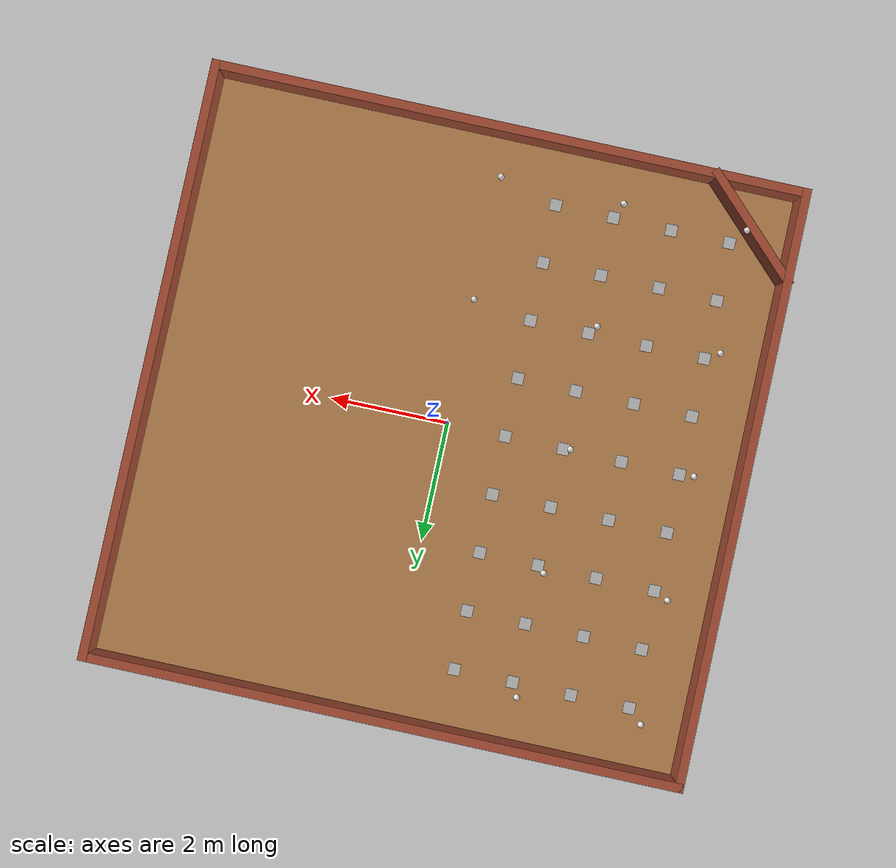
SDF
<sdf version="1.7">
 <world name="default">
  <model name="ground_plane">
   <static>1</static>
   <link name="link">
    <collision name="collision">
     <geometry><plane><normal>0 0 1</normal><size>100 100</size></plane></geometry>
     <surface>
      <contact><collide_bitmask>65535</collide_bitmask></contact>
      <friction><ode><mu>100</mu><mu2>50</mu2></ode></friction>
     </surface>
    </collision>
    <visual name="visual">
     <cast_shadows>0</cast_shadows>
     <geometry><plane><normal>0 0 1</normal><size>100 100</size></plane></geometry>
     <material>
      <script><uri>file://media/materials/scripts/gazebo.material</uri><name>Gazebo/Grey</name></script>
     </material>
    </visual>
   </link>
  </model>
  <model name="square_house">
   <pose>0 0 -0.1 0 -0 0</pose>
   <link name="Floor_0">
    <collision name="Floor_0_Collision">
     <geometry><box><size>10.1811 10.1811 0.1</size></box></geometry>
     <pose>0 0 0.05 0 -0 0</pose>
    </collision>
    <visual name="Floor_0_Visual">
     <pose>0 0 0.05 0 -0 0</pose>
     <geometry><box><size>10.1811 10.1811 0.1</size></box></geometry>
     <material>
      <script><uri>file://media/materials/scripts/gazebo.material</uri><name>Gazebo/Wood</name></script>
      <ambient>1 1 1 1</ambient>
     </material>
     <meta><layer>1</layer></meta>
    </visual>
    <pose>-1e-06 -0 0.001 0 -0 0</pose>
   </link>
   <link name="Wall_0">
    <collision name="Wall_0_Collision">
     <geometry><box><size>10.15 0.15 0</size></box></geometry>
     <pose>0 0 0.001 0 -0 0</pose>
    </collision>
    <visual name="Wall_0_Visual">
     <pose>0 0 0.001 0 -0 0</pose>
     <geometry><box><size>10.15 0.15 0</size></box></geometry>
     <material>
      <script><uri>file://media/materials/scripts/gazebo.material</uri><name>Gazebo/Grey</name></script>
      <ambient>1 1 1 1</ambient>
     </material>
     <meta><layer>0</layer></meta>
    </visual>
    <pose>0.015532 -4.98447 0 0 -0 0</pose>
   </link>
   <link name="Wall_1">
    <collision name="Wall_1_Collision">
     <geometry><box><size>10.15 0.15 0.001</size></box></geometry>
     <pose>0 0 0.0005 0 -0 0</pose>
    </collision>
    <visual name="Wall_1_Visual">
     <pose>0 0 0.0005 0 -0 0</pose>
     <geometry><box><size>10.15 0.15 0.001</size></box></geometry>
     <material>
      <script><uri>file://media/materials/scripts/gazebo.material</uri><name>Gazebo/Grey</name></script>
      <ambient>1 1 1 1</ambient>
     </material>
     <meta><layer>0</layer></meta>
    </visual>
    <pose>5.01553 0.015533 0 0 -0 1.5708</pose>
   </link>
   <link name="Wall_2">
    <collision name="Wall_2_Collision">
     <geometry><box><size>10.15 0.15 0.001</size></box></geometry>
     <pose>0 0 0.0005 0 -0 0</pose>
    </collision>
    <visual name="Wall_2_Visual">
     <pose>0 0 0.0005 0 -0 0</pose>
     <geometry><box><size>10.15 0.15 0.001</size></box></geometry>
     <material>
      <script><uri>file://media/materials/scripts/gazebo.material</uri><name>Gazebo/Grey</name></script>
      <ambient>1 1 1 1</ambient>
     </material>
     <meta><layer>0</layer></meta>
    </visual>
    <pose>0.015532 5.01553 0 0 -0 3.14159</pose>
   </link>
   <link name="Wall_3">
    <collision name="Wall_3_Collision">
     <geometry><box><size>10.15 0.15 0.001</size></box></geometry>
     <pose>0 0 0.0005 0 -0 0</pose>
    </collision>
    <visual name="Wall_3_Visual">
     <pose>0 0 0.0005 0 -0 0</pose>
     <geometry><box><size>10.15 0.15 0.001</size></box></geometry>
     <material>
      <script><uri>file://media/materials/scripts/gazebo.material</uri><name>Gazebo/Grey</name></script>
      <ambient>1 1 1 1</ambient>
     </material>
     <meta><layer>0</layer></meta>
    </visual>
    <pose>-4.98447 0.015533 0 0 -0 -1.5708</pose>
   </link>
   <link name="Wall_5">
    <collision name="Wall_5_Collision">
     <geometry><box><size>10.15 0.15 0.5</size></box></geometry>
     <pose>0 0 0.25 0 -0 0</pose>
    </collision>
    <visual name="Wall_5_Visual">
     <pose>0 0 0.25 0 -0 0</pose>
     <geometry><box><size>10.15 0.15 0.5</size></box></geometry>
     <material>
      <script><uri>file://media/materials/scripts/gazebo.material</uri><name>Gazebo/Bricks</name></script>
      <ambient>1 1 1 1</ambient>
     </material>
     <meta><layer>1</layer></meta>
    </visual>
    <pose>0.015532 -4.98447 0.001 0 -0 0</pose>
   </link>
   <link name="Wall_6">
    <collision name="Wall_6_Collision">
     <geometry><box><size>10.15 0.15 0.5</size></box></geometry>
     <pose>0 0 0.25 0 -0 0</pose>
    </collision>
    <visual name="Wall_6_Visual">
     <pose>0 0 0.25 0 -0 0</pose>
     <geometry><box><size>10.15 0.15 0.5</size></box></geometry>
     <material>
      <script><uri>file://media/materials/scripts/gazebo.material</uri><name>Gazebo/Bricks</name></script>
      <ambient>1 1 1 1</ambient>
     </material>
     <meta><layer>1</layer></meta>
    </visual>
    <pose>5.01553 0.015533 0.001 0 -0 1.5708</pose>
   </link>
   <link name="Wall_7">
    <collision name="Wall_7_Collision">
     <geometry><box><size>10.15 0.15 0.5</size></box></geometry>
     <pose>0 0 0.25 0 -0 0</pose>
    </collision>
    <visual name="Wall_7_Visual">
     <pose>0 0 0.25 0 -0 0</pose>
     <geometry><box><size>10.15 0.15 0.5</size></box></geometry>
     <material>
      <script><uri>file://media/materials/scripts/gazebo.material</uri><name>Gazebo/Bricks</name></script>
      <ambient>1 1 1 1</ambient>
     </material>
     <meta><layer>1</layer></meta>
    </visual>
    <pose>0.015532 5.01553 0.001 0 -0 3.14159</pose>
   </link>
   <link name="Wall_8">
    <collision name="Wall_8_Collision">
     <geometry><box><size>10.15 0.15 0.5</size></box></geometry>
     <pose>0 0 0.25 0 -0 0</pose>
    </collision>
    <visual name="Wall_8_Visual">
     <pose>0 0 0.25 0 -0 0</pose>
     <geometry><box><size>10.15 0.15 0.5</size></box></geometry>
     <material>
      <script><uri>file://media/materials/scripts/gazebo.material</uri><name>Gazebo/Bricks</name></script>
      <ambient>1 1 1 1</ambient>
     </material>
     <meta><layer>1</layer></meta>
    </visual>
    <pose>-4.98447 0.015533 0.001 0 -0 -1.5708</pose>
   </link>
   <link name="Wall_9">
    <collision name="Wall_9_Collision">
     <geometry><box><size>2.27132 0.15 0.5</size></box></geometry>
     <pose>0 0 0.25 0 -0 0</pose>
    </collision>
    <visual name="Wall_9_Visual">
     <pose>0 0 0.25 0 -0 0</pose>
     <geometry><box><size>2.27132 0.15 0.5</size></box></geometry>
     <material>
      <script><uri>file://media/materials/scripts/gazebo.material</uri><name>Gazebo/Bricks</name></script>
      <ambient>1 1 1 1</ambient>
     </material>
     <meta><layer>1</layer></meta>
    </visual>
    <pose>-4.23447 -4.23447 0.001 0 -0 -0.785398</pose>
   </link>
   <static>1</static>
  </model>
  <model name="Ceiling_Light_0">
   <pose>-4 -4 1 0 0 0</pose>
   <link name="bulb">
    <visual name="main">
     <geometry><sphere><radius>0.05</radius></sphere></geometry>
     <material>
      <script><uri>file://media/materials/scripts/gazebo.material</uri><name>Gazebo/WhiteGlow</name></script>
      <shininess>0.3</shininess>
     </material>
    </visual>
    <light name="source" type="spot">
     <diffuse>1 1 0.6 1</diffuse>
     <specular>.1 .1 .1 1</specular>
     <spot>
      <inner_angle>1.5707963267948966</inner_angle>
      <outer_angle>2.356194490192345</outer_angle>
      <falloff>0.5</falloff>
     </spot>
     <attenuation>
      <range>3</range>
      <linear>0.6</linear>
      <constant>0.8</constant>
      <quadratic>0.2</quadratic>
     </attenuation>
     <cast_shadows>0</cast_shadows>
    </light>
   </link>
   <static>1</static>
  </model>
  <model name="Ceiling_Light_1">
   <pose>-4 -2 1 0 0 0</pose>
   <link name="bulb">
    <visual name="main">
     <geometry><sphere><radius>0.05</radius></sphere></geometry>
     <material>
      <script><uri>file://media/materials/scripts/gazebo.material</uri><name>Gazebo/WhiteGlow</name></script>
      <shininess>0.3</shininess>
     </material>
    </visual>
    <light name="source" type="spot">
     <diffuse>1 1 0.6 1</diffuse>
     <specular>.1 .1 .1 1</specular>
     <spot>
      <inner_angle>1.5707963267948966</inner_angle>
      <outer_angle>2.356194490192345</outer_angle>
      <falloff>0.5</falloff>
     </spot>
     <attenuation>
      <range>3</range>
      <linear>0.6</linear>
      <constant>0.8</constant>
      <quadratic>0.2</quadratic>
     </attenuation>
     <cast_shadows>0</cast_shadows>
    </light>
   </link>
   <static>1</static>
  </model>
  <model name="Ceiling_Light_2">
   <pose>-4 0 1 0 0 0</pose>
   <link name="bulb">
    <visual name="main">
     <geometry><sphere><radius>0.05</radius></sphere></geometry>
     <material>
      <script><uri>file://media/materials/scripts/gazebo.material</uri><name>Gazebo/WhiteGlow</name></script>
      <shininess>0.3</shininess>
     </material>
    </visual>
    <light name="source" type="spot">
     <diffuse>1 1 0.6 1</diffuse>
     <specular>.1 .1 .1 1</specular>
     <spot>
      <inner_angle>1.5707963267948966</inner_angle>
      <outer_angle>2.356194490192345</outer_angle>
      <falloff>0.5</falloff>
     </spot>
     <attenuation>
      <range>3</range>
      <linear>0.6</linear>
      <constant>0.8</constant>
      <quadratic>0.2</quadratic>
     </attenuation>
     <cast_shadows>0</cast_shadows>
    </light>
   </link>
   <static>1</static>
  </model>
  <model name="Ceiling_Light_3">
   <pose>-4 2 1 0 0 0</pose>
   <link name="bulb">
    <visual name="main">
     <geometry><sphere><radius>0.05</radius></sphere></geometry>
     <material>
      <script><uri>file://media/materials/scripts/gazebo.material</uri><name>Gazebo/WhiteGlow</name></script>
      <shininess>0.3</shininess>
     </material>
    </visual>
    <light name="source" type="spot">
     <diffuse>1 1 0.6 1</diffuse>
     <specular>.1 .1 .1 1</specular>
     <spot>
      <inner_angle>1.5707963267948966</inner_angle>
      <outer_angle>2.356194490192345</outer_angle>
      <falloff>0.5</falloff>
     </spot>
     <attenuation>
      <range>3</range>
      <linear>0.6</linear>
      <constant>0.8</constant>
      <quadratic>0.2</quadratic>
     </attenuation>
     <cast_shadows>0</cast_shadows>
    </light>
   </link>
   <static>1</static>
  </model>
  <model name="Ceiling_Light_4">
   <pose>-4 4 1 0 0 0</pose>
   <link name="bulb">
    <visual name="main">
     <geometry><sphere><radius>0.05</radius></sphere></geometry>
     <material>
      <script><uri>file://media/materials/scripts/gazebo.material</uri><name>Gazebo/WhiteGlow</name></script>
      <shininess>0.3</shininess>
     </material>
    </visual>
    <light name="source" type="spot">
     <diffuse>1 1 0.6 1</diffuse>
     <specular>.1 .1 .1 1</specular>
     <spot>
      <inner_angle>1.5707963267948966</inner_angle>
      <outer_angle>2.356194490192345</outer_angle>
      <falloff>0.5</falloff>
     </spot>
     <attenuation>
      <range>3</range>
      <linear>0.6</linear>
      <constant>0.8</constant>
      <quadratic>0.2</quadratic>
     </attenuation>
     <cast_shadows>0</cast_shadows>
    </light>
   </link>
   <static>1</static>
  </model>
  <model name="Ceiling_Light_5">
   <pose>-2 -4 1 0 0 0</pose>
   <link name="bulb">
    <visual name="main">
     <geometry><sphere><radius>0.05</radius></sphere></geometry>
     <material>
      <script><uri>file://media/materials/scripts/gazebo.material</uri><name>Gazebo/WhiteGlow</name></script>
      <shininess>0.3</shininess>
     </material>
    </visual>
    <light name="source" type="spot">
     <diffuse>1 1 0.6 1</diffuse>
     <specular>.1 .1 .1 1</specular>
     <spot>
      <inner_angle>1.5707963267948966</inner_angle>
      <outer_angle>2.356194490192345</outer_angle>
      <falloff>0.5</falloff>
     </spot>
     <attenuation>
      <range>3</range>
      <linear>0.6</linear>
      <constant>0.8</constant>
      <quadratic>0.2</quadratic>
     </attenuation>
     <cast_shadows>0</cast_shadows>
    </light>
   </link>
   <static>1</static>
  </model>
  <model name="Ceiling_Light_6">
   <pose>-2 -2 1 0 0 0</pose>
   <link name="bulb">
    <visual name="main">
     <geometry><sphere><radius>0.05</radius></sphere></geometry>
     <material>
      <script><uri>file://media/materials/scripts/gazebo.material</uri><name>Gazebo/WhiteGlow</name></script>
      <shininess>0.3</shininess>
     </material>
    </visual>
    <light name="source" type="spot">
     <diffuse>1 1 0.6 1</diffuse>
     <specular>.1 .1 .1 1</specular>
     <spot>
      <inner_angle>1.5707963267948966</inner_angle>
      <outer_angle>2.356194490192345</outer_angle>
      <falloff>0.5</falloff>
     </spot>
     <attenuation>
      <range>3</range>
      <linear>0.6</linear>
      <constant>0.8</constant>
      <quadratic>0.2</quadratic>
     </attenuation>
     <cast_shadows>0</cast_shadows>
    </light>
   </link>
   <static>1</static>
  </model>
  <model name="Ceiling_Light_7">
   <pose>-2 0 1 0 0 0</pose>
   <link name="bulb">
    <visual name="main">
     <geometry><sphere><radius>0.05</radius></sphere></geometry>
     <material>
      <script><uri>file://media/materials/scripts/gazebo.material</uri><name>Gazebo/WhiteGlow</name></script>
      <shininess>0.3</shininess>
     </material>
    </visual>
    <light name="source" type="spot">
     <diffuse>1 1 0.6 1</diffuse>
     <specular>.1 .1 .1 1</specular>
     <spot>
      <inner_angle>1.5707963267948966</inner_angle>
      <outer_angle>2.356194490192345</outer_angle>
      <falloff>0.5</falloff>
     </spot>
     <attenuation>
      <range>3</range>
      <linear>0.6</linear>
      <constant>0.8</constant>
      <quadratic>0.2</quadratic>
     </attenuation>
     <cast_shadows>0</cast_shadows>
    </light>
   </link>
   <static>1</static>
  </model>
  <model name="Ceiling_Light_8">
   <pose>-2 2 1 0 0 0</pose>
   <link name="bulb">
    <visual name="main">
     <geometry><sphere><radius>0.05</radius></sphere></geometry>
     <material>
      <script><uri>file://media/materials/scripts/gazebo.material</uri><name>Gazebo/WhiteGlow</name></script>
      <shininess>0.3</shininess>
     </material>
    </visual>
    <light name="source" type="spot">
     <diffuse>1 1 0.6 1</diffuse>
     <specular>.1 .1 .1 1</specular>
     <spot>
      <inner_angle>1.5707963267948966</inner_angle>
      <outer_angle>2.356194490192345</outer_angle>
      <falloff>0.5</falloff>
     </spot>
     <attenuation>
      <range>3</range>
      <linear>0.6</linear>
      <constant>0.8</constant>
      <quadratic>0.2</quadratic>
     </attenuation>
     <cast_shadows>0</cast_shadows>
    </light>
   </link>
   <static>1</static>
  </model>
  <model name="Ceiling_Light_9">
   <pose>-2 4 1 0 0 0</pose>
   <link name="bulb">
    <visual name="main">
     <geometry><sphere><radius>0.05</radius></sphere></geometry>
     <material>
      <script><uri>file://media/materials/scripts/gazebo.material</uri><name>Gazebo/WhiteGlow</name></script>
      <shininess>0.3</shininess>
     </material>
    </visual>
    <light name="source" type="spot">
     <diffuse>1 1 0.6 1</diffuse>
     <specular>.1 .1 .1 1</specular>
     <spot>
      <inner_angle>1.5707963267948966</inner_angle>
      <outer_angle>2.356194490192345</outer_angle>
      <falloff>0.5</falloff>
     </spot>
     <attenuation>
      <range>3</range>
      <linear>0.6</linear>
      <constant>0.8</constant>
      <quadratic>0.2</quadratic>
     </attenuation>
     <cast_shadows>0</cast_shadows>
    </light>
   </link>
   <static>1</static>
  </model>
  <model name="Ceiling_Light_10">
   <pose>0 -4 1 0 0 0</pose>
   <link name="bulb">
    <visual name="main">
     <geometry><sphere><radius>0.05</radius></sphere></geometry>
     <material>
      <script><uri>file://media/materials/scripts/gazebo.material</uri><name>Gazebo/WhiteGlow</name></script>
      <shininess>0.3</shininess>
     </material>
    </visual>
    <light name="source" type="spot">
     <diffuse>1 1 0.6 1</diffuse>
     <specular>.1 .1 .1 1</specular>
     <spot>
      <inner_angle>1.5707963267948966</inner_angle>
      <outer_angle>2.356194490192345</outer_angle>
      <falloff>0.5</falloff>
     </spot>
     <attenuation>
      <range>3</range>
      <linear>0.6</linear>
      <constant>0.8</constant>
      <quadratic>0.2</quadratic>
     </attenuation>
     <cast_shadows>0</cast_shadows>
    </light>
   </link>
   <static>1</static>
  </model>
  <model name="Ceiling_Light_11">
   <pose>0 -2 1 0 0 0</pose>
   <link name="bulb">
    <visual name="main">
     <geometry><sphere><radius>0.05</radius></sphere></geometry>
     <material>
      <script><uri>file://media/materials/scripts/gazebo.material</uri><name>Gazebo/WhiteGlow</name></script>
      <shininess>0.3</shininess>
     </material>
    </visual>
    <light name="source" type="spot">
     <diffuse>1 1 0.6 1</diffuse>
     <specular>.1 .1 .1 1</specular>
     <spot>
      <inner_angle>1.5707963267948966</inner_angle>
      <outer_angle>2.356194490192345</outer_angle>
      <falloff>0.5</falloff>
     </spot>
     <attenuation>
      <range>3</range>
      <linear>0.6</linear>
      <constant>0.8</constant>
      <quadratic>0.2</quadratic>
     </attenuation>
     <cast_shadows>0</cast_shadows>
    </light>
   </link>
   <static>1</static>
  </model>
  <model name="Apriltag36_11_00000_clone">
   <link name="main">
    <visual name="main_Visual">
     <geometry><box><size>0.2 0.2 0.01</size></box></geometry>
     <material>
      <script>
       <uri>model://Apriltag36_11_00000/materials/scripts</uri>
       <uri>model://Apriltag36_11_00000/materials/textures</uri>
       <name>Apriltag36_11_00000</name>
      </script>
     </material>
    </visual>
   </link>
   <static>1</static>
   <pose>-4 4 0 0 -0 0</pose>
  </model>
  <model name="Apriltag36_11_00000_clone_0">
   <link name="main">
    <visual name="main_Visual">
     <geometry><box><size>0.2 0.2 0.01</size></box></geometry>
     <material>
      <script>
       <uri>model://Apriltag36_11_00000/materials/scripts</uri>
       <uri>model://Apriltag36_11_00000/materials/textures</uri>
       <name>Apriltag36_11_00000</name>
      </script>
     </material>
    </visual>
   </link>
   <static>1</static>
   <pose>-2 4 0 0 -0 0</pose>
  </model>
  <model name="Apriltag36_11_00000_clone_4">
   <link name="main">
    <visual name="main_Visual">
     <geometry><box><size>0.2 0.2 0.01</size></box></geometry>
     <material>
      <script>
       <uri>model://Apriltag36_11_00000/materials/scripts</uri>
       <uri>model://Apriltag36_11_00000/materials/textures</uri>
       <name>Apriltag36_11_00000</name>
      </script>
     </material>
    </visual>
   </link>
   <static>1</static>
   <pose>-4 2 0 0 -0 0</pose>
  </model>
  <model name="Apriltag36_11_00000_clone_5">
   <link name="main">
    <visual name="main_Visual">
     <geometry><box><size>0.2 0.2 0.01</size></box></geometry>
     <material>
      <script>
       <uri>model://Apriltag36_11_00000/materials/scripts</uri>
       <uri>model://Apriltag36_11_00000/materials/textures</uri>
       <name>Apriltag36_11_00000</name>
      </script>
     </material>
    </visual>
   </link>
   <static>1</static>
   <pose>-2 2 0 0 -0 0</pose>
  </model>
  <model name="Apriltag36_11_00000_clone_4_clone">
   <link name="main">
    <visual name="main_Visual">
     <geometry><box><size>0.2 0.2 0.01</size></box></geometry>
     <material>
      <script>
       <uri>model://Apriltag36_11_00000/materials/scripts</uri>
       <uri>model://Apriltag36_11_00000/materials/textures</uri>
       <name>Apriltag36_11_00000</name>
      </script>
     </material>
    </visual>
   </link>
   <static>1</static>
   <pose>-4 0 0 0 -0 0</pose>
  </model>
  <model name="Apriltag36_11_00000_clone_4_clone_0">
   <link name="main">
    <visual name="main_Visual">
     <geometry><box><size>0.2 0.2 0.01</size></box></geometry>
     <material>
      <script>
       <uri>model://Apriltag36_11_00000/materials/scripts</uri>
       <uri>model://Apriltag36_11_00000/materials/textures</uri>
       <name>Apriltag36_11_00000</name>
      </script>
     </material>
    </visual>
   </link>
   <static>1</static>
   <pose>-2 0 0 0 -0 0</pose>
  </model>
  <model name="Apriltag36_11_00000_clone_4_clone_4">
   <link name="main">
    <visual name="main_Visual">
     <geometry><box><size>0.2 0.2 0.01</size></box></geometry>
     <material>
      <script>
       <uri>model://Apriltag36_11_00000/materials/scripts</uri>
       <uri>model://Apriltag36_11_00000/materials/textures</uri>
       <name>Apriltag36_11_00000</name>
      </script>
     </material>
    </visual>
   </link>
   <static>1</static>
   <pose>-4 -2 0 0 -0 0</pose>
  </model>
  <model name="Apriltag36_11_00000_clone_4_clone_5">
   <link name="main">
    <visual name="main_Visual">
     <geometry><box><size>0.2 0.2 0.01</size></box></geometry>
     <material>
      <script>
       <uri>model://Apriltag36_11_00000/materials/scripts</uri>
       <uri>model://Apriltag36_11_00000/materials/textures</uri>
       <name>Apriltag36_11_00000</name>
      </script>
     </material>
    </visual>
   </link>
   <static>1</static>
   <pose>-2 -2 0 0 -0 0</pose>
  </model>
  <model name="Apriltag36_11_00000_clone_4_clone_9">
   <link name="main">
    <visual name="main_Visual">
     <geometry><box><size>0.2 0.2 0.01</size></box></geometry>
     <material>
      <script>
       <uri>model://Apriltag36_11_00000/materials/scripts</uri>
       <uri>model://Apriltag36_11_00000/materials/textures</uri>
       <name>Apriltag36_11_00000</name>
      </script>
     </material>
    </visual>
   </link>
   <static>1</static>
   <pose>-4 -4 0 0 -0 0</pose>
  </model>
  <model name="Apriltag36_11_00000_clone_4_clone_10">
   <link name="main">
    <visual name="main_Visual">
     <geometry><box><size>0.2 0.2 0.01</size></box></geometry>
     <material>
      <script>
       <uri>model://Apriltag36_11_00000/materials/scripts</uri>
       <uri>model://Apriltag36_11_00000/materials/textures</uri>
       <name>Apriltag36_11_00000</name>
      </script>
     </material>
    </visual>
   </link>
   <static>1</static>
   <pose>-2 -4 0 0 -0 0</pose>
  </model>
  <model name="Apriltag36_11_00002_clone">
   <link name="main">
    <visual name="main_Visual">
     <geometry><box><size>0.2 0.2 0.01</size></box></geometry>
     <material>
      <script>
       <uri>model://Apriltag36_11_00002/materials/scripts</uri>
       <uri>model://Apriltag36_11_00002/materials/textures</uri>
       <name>Apriltag36_11_00002</name>
      </script>
     </material>
    </visual>
   </link>
   <static>1</static>
   <pose>-4 3 0 0 -0 0</pose>
  </model>
  <model name="Apriltag36_11_00002_clone_0">
   <link name="main">
    <visual name="main_Visual">
     <geometry><box><size>0.2 0.2 0.01</size></box></geometry>
     <material>
      <script>
       <uri>model://Apriltag36_11_00002/materials/scripts</uri>
       <uri>model://Apriltag36_11_00002/materials/textures</uri>
       <name>Apriltag36_11_00002</name>
      </script>
     </material>
    </visual>
   </link>
   <static>1</static>
   <pose>-4 1 0 0 -0 0</pose>
  </model>
  <model name="Apriltag36_11_00002_clone_1">
   <link name="main">
    <visual name="main_Visual">
     <geometry><box><size>0.2 0.2 0.01</size></box></geometry>
     <material>
      <script>
       <uri>model://Apriltag36_11_00002/materials/scripts</uri>
       <uri>model://Apriltag36_11_00002/materials/textures</uri>
       <name>Apriltag36_11_00002</name>
      </script>
     </material>
    </visual>
   </link>
   <static>1</static>
   <pose>-4 -1 0 0 -0 0</pose>
  </model>
  <model name="Apriltag36_11_00002_clone_2">
   <link name="main">
    <visual name="main_Visual">
     <geometry><box><size>0.2 0.2 0.01</size></box></geometry>
     <material>
      <script>
       <uri>model://Apriltag36_11_00002/materials/scripts</uri>
       <uri>model://Apriltag36_11_00002/materials/textures</uri>
       <name>Apriltag36_11_00002</name>
      </script>
     </material>
    </visual>
   </link>
   <static>1</static>
   <pose>-4 -3 0 0 -0 0</pose>
  </model>
  <model name="Apriltag36_11_00002_clone_3">
   <link name="main">
    <visual name="main_Visual">
     <geometry><box><size>0.2 0.2 0.01</size></box></geometry>
     <material>
      <script>
       <uri>model://Apriltag36_11_00002/materials/scripts</uri>
       <uri>model://Apriltag36_11_00002/materials/textures</uri>
       <name>Apriltag36_11_00002</name>
      </script>
     </material>
    </visual>
   </link>
   <static>1</static>
   <pose>-2 3 0 0 -0 0</pose>
  </model>
  <model name="Apriltag36_11_00002_clone_4">
   <link name="main">
    <visual name="main_Visual">
     <geometry><box><size>0.2 0.2 0.01</size></box></geometry>
     <material>
      <script>
       <uri>model://Apriltag36_11_00002/materials/scripts</uri>
       <uri>model://Apriltag36_11_00002/materials/textures</uri>
       <name>Apriltag36_11_00002</name>
      </script>
     </material>
    </visual>
   </link>
   <static>1</static>
   <pose>-2 1 0 0 -0 0</pose>
  </model>
  <model name="Apriltag36_11_00002_clone_5">
   <link name="main">
    <visual name="main_Visual">
     <geometry><box><size>0.2 0.2 0.01</size></box></geometry>
     <material>
      <script>
       <uri>model://Apriltag36_11_00002/materials/scripts</uri>
       <uri>model://Apriltag36_11_00002/materials/textures</uri>
       <name>Apriltag36_11_00002</name>
      </script>
     </material>
    </visual>
   </link>
   <static>1</static>
   <pose>-2 -1 0 0 -0 0</pose>
  </model>
  <model name="Apriltag36_11_00002_clone_6">
   <link name="main">
    <visual name="main_Visual">
     <geometry><box><size>0.2 0.2 0.01</size></box></geometry>
     <material>
      <script>
       <uri>model://Apriltag36_11_00002/materials/scripts</uri>
       <uri>model://Apriltag36_11_00002/materials/textures</uri>
       <name>Apriltag36_11_00002</name>
      </script>
     </material>
    </visual>
   </link>
   <static>1</static>
   <pose>-2 -3 0 0 -0 0</pose>
  </model>
  <model name="Apriltag36_11_00001_clone">
   <link name="main">
    <visual name="main_Visual">
     <geometry><box><size>0.2 0.2 0.01</size></box></geometry>
     <material>
      <script>
       <uri>model://Apriltag36_11_00001/materials/scripts</uri>
       <uri>model://Apriltag36_11_00001/materials/textures</uri>
       <name>Apriltag36_11_00001</name>
      </script>
     </material>
    </visual>
   </link>
   <static>1</static>
   <pose>-3 4 0 0 -0 0</pose>
  </model>
  <model name="Apriltag36_11_00001_clone_0">
   <link name="main">
    <visual name="main_Visual">
     <geometry><box><size>0.2 0.2 0.01</size></box></geometry>
     <material>
      <script>
       <uri>model://Apriltag36_11_00001/materials/scripts</uri>
       <uri>model://Apriltag36_11_00001/materials/textures</uri>
       <name>Apriltag36_11_00001</name>
      </script>
     </material>
    </visual>
   </link>
   <static>1</static>
   <pose>-3 2 0 0 -0 0</pose>
  </model>
  <model name="Apriltag36_11_00001_clone_1">
   <link name="main">
    <visual name="main_Visual">
     <geometry><box><size>0.2 0.2 0.01</size></box></geometry>
     <material>
      <script>
       <uri>model://Apriltag36_11_00001/materials/scripts</uri>
       <uri>model://Apriltag36_11_00001/materials/textures</uri>
       <name>Apriltag36_11_00001</name>
      </script>
     </material>
    </visual>
   </link>
   <static>1</static>
   <pose>-3 0 0 0 -0 0</pose>
  </model>
  <model name="Apriltag36_11_00001_clone_2">
   <link name="main">
    <visual name="main_Visual">
     <geometry><box><size>0.2 0.2 0.01</size></box></geometry>
     <material>
      <script>
       <uri>model://Apriltag36_11_00001/materials/scripts</uri>
       <uri>model://Apriltag36_11_00001/materials/textures</uri>
       <name>Apriltag36_11_00001</name>
      </script>
     </material>
    </visual>
   </link>
   <static>1</static>
   <pose>-3 -2 0 0 -0 0</pose>
  </model>
  <model name="Apriltag36_11_00001_clone_3">
   <link name="main">
    <visual name="main_Visual">
     <geometry><box><size>0.2 0.2 0.01</size></box></geometry>
     <material>
      <script>
       <uri>model://Apriltag36_11_00001/materials/scripts</uri>
       <uri>model://Apriltag36_11_00001/materials/textures</uri>
       <name>Apriltag36_11_00001</name>
      </script>
     </material>
    </visual>
   </link>
   <static>1</static>
   <pose>-3 -4 0 0 -0 0</pose>
  </model>
  <model name="Apriltag36_11_00001_clone_4">
   <link name="main">
    <visual name="main_Visual">
     <geometry><box><size>0.2 0.2 0.01</size></box></geometry>
     <material>
      <script>
       <uri>model://Apriltag36_11_00001/materials/scripts</uri>
       <uri>model://Apriltag36_11_00001/materials/textures</uri>
       <name>Apriltag36_11_00001</name>
      </script>
     </material>
    </visual>
   </link>
   <static>1</static>
   <pose>-1 4 0 0 -0 0</pose>
  </model>
  <model name="Apriltag36_11_00001_clone_5">
   <link name="main">
    <visual name="main_Visual">
     <geometry><box><size>0.2 0.2 0.01</size></box></geometry>
     <material>
      <script>
       <uri>model://Apriltag36_11_00001/materials/scripts</uri>
       <uri>model://Apriltag36_11_00001/materials/textures</uri>
       <name>Apriltag36_11_00001</name>
      </script>
     </material>
    </visual>
   </link>
   <static>1</static>
   <pose>-1 2 0 0 -0 0</pose>
  </model>
  <model name="Apriltag36_11_00001_clone_6">
   <link name="main">
    <visual name="main_Visual">
     <geometry><box><size>0.2 0.2 0.01</size></box></geometry>
     <material>
      <script>
       <uri>model://Apriltag36_11_00001/materials/scripts</uri>
       <uri>model://Apriltag36_11_00001/materials/textures</uri>
       <name>Apriltag36_11_00001</name>
      </script>
     </material>
    </visual>
   </link>
   <static>1</static>
   <pose>-1 0 0 0 -0 0</pose>
  </model>
  <model name="Apriltag36_11_00001_clone_7">
   <link name="main">
    <visual name="main_Visual">
     <geometry><box><size>0.2 0.2 0.01</size></box></geometry>
     <material>
      <script>
       <uri>model://Apriltag36_11_00001/materials/scripts</uri>
       <uri>model://Apriltag36_11_00001/materials/textures</uri>
       <name>Apriltag36_11_00001</name>
      </script>
     </material>
    </visual>
   </link>
   <static>1</static>
   <pose>-1 -2 0 0 -0 0</pose>
  </model>
  <model name="Apriltag36_11_00001_clone_8">
   <link name="main">
    <visual name="main_Visual">
     <geometry><box><size>0.2 0.2 0.01</size></box></geometry>
     <material>
      <script>
       <uri>model://Apriltag36_11_00001/materials/scripts</uri>
       <uri>model://Apriltag36_11_00001/materials/textures</uri>
       <name>Apriltag36_11_00001</name>
      </script>
     </material>
    </visual>
   </link>
   <static>1</static>
   <pose>-1 -4 0 0 -0 0</pose>
  </model>
  <model name="Apriltag36_11_00003_clone">
   <link name="main">
    <visual name="main_Visual">
     <geometry><box><size>0.2 0.2 0.01</size></box></geometry>
     <material>
      <script>
       <uri>model://Apriltag36_11_00003/materials/scripts</uri>
       <uri>model://Apriltag36_11_00003/materials/textures</uri>
       <name>Apriltag36_11_00003</name>
      </script>
     </material>
    </visual>
   </link>
   <static>1</static>
   <pose>-3 3 0 0 -0 0</pose>
  </model>
  <model name="Apriltag36_11_00003_clone_0">
   <link name="main">
    <visual name="main_Visual">
     <geometry><box><size>0.2 0.2 0.01</size></box></geometry>
     <material>
      <script>
       <uri>model://Apriltag36_11_00003/materials/scripts</uri>
       <uri>model://Apriltag36_11_00003/materials/textures</uri>
       <name>Apriltag36_11_00003</name>
      </script>
     </material>
    </visual>
   </link>
   <static>1</static>
   <pose>-3 1 0 0 -0 0</pose>
  </model>
  <model name="Apriltag36_11_00003_clone_1">
   <link name="main">
    <visual name="main_Visual">
     <geometry><box><size>0.2 0.2 0.01</size></box></geometry>
     <material>
      <script>
       <uri>model://Apriltag36_11_00003/materials/scripts</uri>
       <uri>model://Apriltag36_11_00003/materials/textures</uri>
       <name>Apriltag36_11_00003</name>
      </script>
     </material>
    </visual>
   </link>
   <static>1</static>
   <pose>-3 -1 0 0 -0 0</pose>
  </model>
  <model name="Apriltag36_11_00003_clone_2">
   <link name="main">
    <visual name="main_Visual">
     <geometry><box><size>0.2 0.2 0.01</size></box></geometry>
     <material>
      <script>
       <uri>model://Apriltag36_11_00003/materials/scripts</uri>
       <uri>model://Apriltag36_11_00003/materials/textures</uri>
       <name>Apriltag36_11_00003</name>
      </script>
     </material>
    </visual>
   </link>
   <static>1</static>
   <pose>-3 -3 0 0 -0 0</pose>
  </model>
  <model name="Apriltag36_11_00003_clone_3">
   <link name="main">
    <visual name="main_Visual">
     <geometry><box><size>0.2 0.2 0.01</size></box></geometry>
     <material>
      <script>
       <uri>model://Apriltag36_11_00003/materials/scripts</uri>
       <uri>model://Apriltag36_11_00003/materials/textures</uri>
       <name>Apriltag36_11_00003</name>
      </script>
     </material>
    </visual>
   </link>
   <static>1</static>
   <pose>-1 -3 0 0 -0 0</pose>
  </model>
  <model name="Apriltag36_11_00003_clone_4">
   <link name="main">
    <visual name="main_Visual">
     <geometry><box><size>0.2 0.2 0.01</size></box></geometry>
     <material>
      <script>
       <uri>model://Apriltag36_11_00003/materials/scripts</uri>
       <uri>model://Apriltag36_11_00003/materials/textures</uri>
       <name>Apriltag36_11_00003</name>
      </script>
     </material>
    </visual>
   </link>
   <static>1</static>
   <pose>-1 -1 0 0 -0 0</pose>
  </model>
  <model name="Apriltag36_11_00003_clone_5">
   <link name="main">
    <visual name="main_Visual">
     <geometry><box><size>0.2 0.2 0.01</size></box></geometry>
     <material>
      <script>
       <uri>model://Apriltag36_11_00003/materials/scripts</uri>
       <uri>model://Apriltag36_11_00003/materials/textures</uri>
       <name>Apriltag36_11_00003</name>
      </script>
     </material>
    </visual>
   </link>
   <static>1</static>
   <pose>-1 3 0 0 -0 0</pose>
  </model>
  <model name="Apriltag36_11_00003_clone_6">
   <link name="main">
    <visual name="main_Visual">
     <geometry><box><size>0.2 0.2 0.01</size></box></geometry>
     <material>
      <script>
       <uri>model://Apriltag36_11_00003/materials/scripts</uri>
       <uri>model://Apriltag36_11_00003/materials/textures</uri>
       <name>Apriltag36_11_00003</name>
      </script>
     </material>
    </visual>
   </link>
   <static>1</static>
   <pose>-1 1 0 0 -0 0</pose>
  </model>
 </world>
</sdf>
